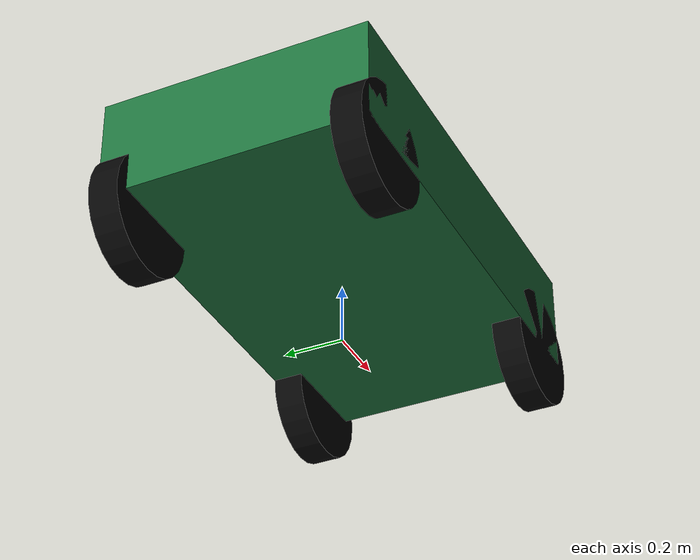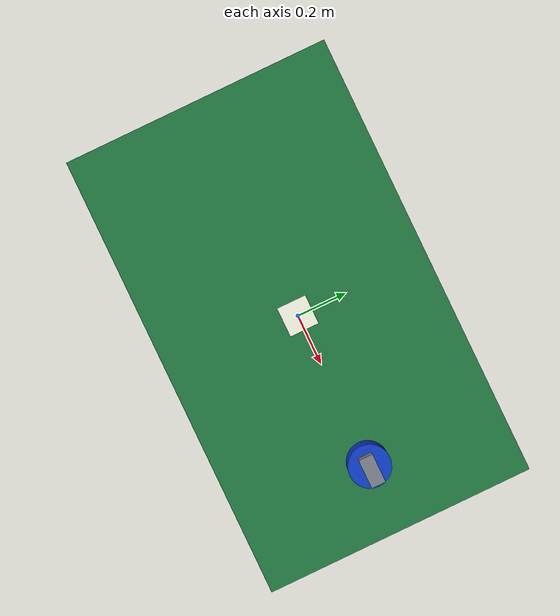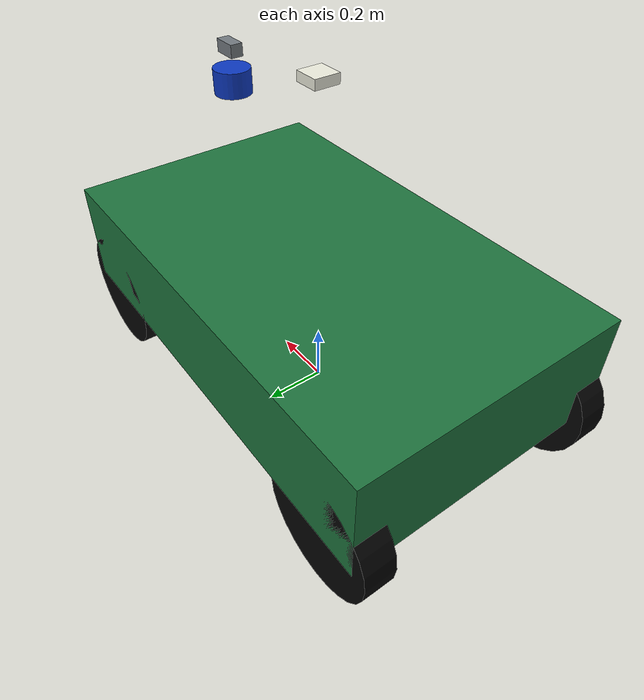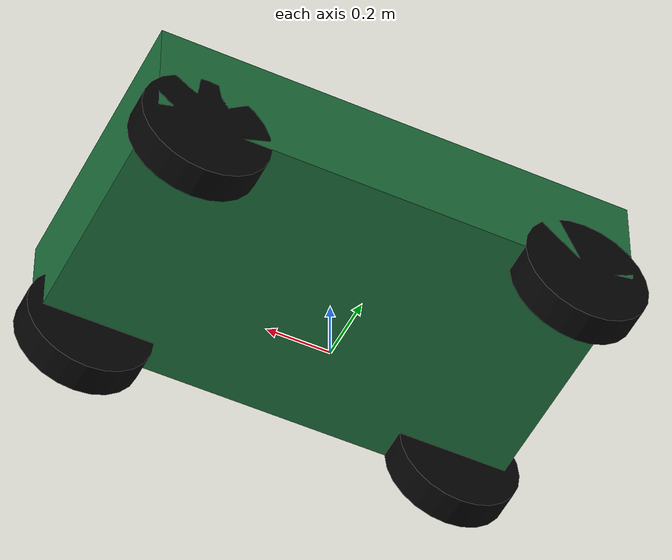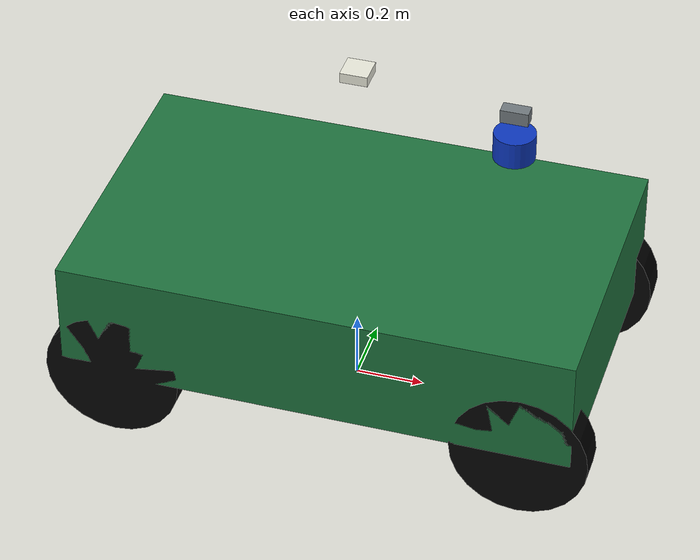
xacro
<?xml version="1.0"?>
<robot xmlns:xacro="http://www.ros.org/wiki/xacro" name="spraying_car">
  <!-- Confirmed vehicle parameters. Units are meters and radians unless noted. -->
  <xacro:property name="wheelbase" value="1.2"/>
  <xacro:property name="track_width" value="0.8"/>
  <xacro:property name="wheel_diameter" value="0.4"/>
  <xacro:property name="wheel_radius" value="0.2"/>

  <!-- Estimated placeholders, pending physical measurement. -->
  <xacro:property name="wheel_width" value="0.10"/>
  <xacro:property name="chassis_length" value="1.5"/>
  <xacro:property name="chassis_width" value="0.9"/>
  <xacro:property name="chassis_height" value="0.35"/>
  <xacro:property name="base_link_z" value="${wheel_radius + chassis_height / 2.0}"/>
  <xacro:property name="wheel_z" value="${-chassis_height / 2.0}"/>
  <xacro:property name="min_turning_radius" value="1.5"/>
  <xacro:property name="max_steer_angle_deg" value="35.0"/>
  <xacro:property name="max_steer_angle_rad" value="0.610865"/>

  <!--
    L1RM is mounted near the front of the vehicle and slightly above the chassis.
    Current xyz/rpy values are estimates and must be corrected after real measurement.
  -->
  <xacro:property name="lidar_x" value="0.45"/>
  <xacro:property name="lidar_y" value="0.0"/>
  <xacro:property name="lidar_z" value="0.55"/>
  <xacro:property name="lidar_roll" value="0.0"/>
  <xacro:property name="lidar_pitch" value="0.0"/>
  <xacro:property name="lidar_yaw" value="0.0"/>

  <xacro:property name="camera_x" value="0.45"/>
  <xacro:property name="camera_y" value="0.0"/>
  <xacro:property name="camera_z" value="0.65"/>
  <xacro:property name="camera_roll" value="0.0"/>
  <xacro:property name="camera_pitch" value="0.0"/>
  <xacro:property name="camera_yaw" value="0.0"/>

  <xacro:property name="gps_x" value="0.0"/>
  <xacro:property name="gps_y" value="0.0"/>
  <xacro:property name="gps_z" value="0.70"/>
  <xacro:property name="gps_roll" value="0.0"/>
  <xacro:property name="gps_pitch" value="0.0"/>
  <xacro:property name="gps_yaw" value="0.0"/>

  <material name="chassis_green">
    <color rgba="0.12 0.45 0.24 1.0"/>
  </material>
  <material name="wheel_black">
    <color rgba="0.02 0.02 0.02 1.0"/>
  </material>
  <material name="sensor_blue">
    <color rgba="0.05 0.22 0.75 1.0"/>
  </material>
  <material name="sensor_gray">
    <color rgba="0.45 0.48 0.50 1.0"/>
  </material>
  <material name="gps_white">
    <color rgba="0.92 0.92 0.86 1.0"/>
  </material>

  <xacro:macro name="wheel_link" params="name">
    <link name="${name}">
      <visual>
        <origin xyz="0 0 0" rpy="1.57079632679 0 0"/>
        <geometry>
          <cylinder radius="${wheel_radius}" length="${wheel_width}"/>
        </geometry>
        <material name="wheel_black"/>
      </visual>
      <collision>
        <origin xyz="0 0 0" rpy="1.57079632679 0 0"/>
        <geometry>
          <cylinder radius="${wheel_radius}" length="${wheel_width}"/>
        </geometry>
      </collision>
    </link>
  </xacro:macro>

  <link name="base_footprint"/>

  <joint name="base_footprint_to_base_link" type="fixed">
    <parent link="base_footprint"/>
    <child link="base_link"/>
    <origin xyz="0 0 ${base_link_z}" rpy="0 0 0"/>
  </joint>

  <link name="base_link"/>

  <joint name="base_link_to_chassis_link" type="fixed">
    <parent link="base_link"/>
    <child link="chassis_link"/>
    <origin xyz="0 0 0" rpy="0 0 0"/>
  </joint>

  <link name="chassis_link">
    <visual>
      <origin xyz="0 0 0" rpy="0 0 0"/>
      <geometry>
        <box size="${chassis_length} ${chassis_width} ${chassis_height}"/>
      </geometry>
      <material name="chassis_green"/>
    </visual>
    <collision>
      <origin xyz="0 0 0" rpy="0 0 0"/>
      <geometry>
        <box size="${chassis_length} ${chassis_width} ${chassis_height}"/>
      </geometry>
    </collision>
  </link>

  <xacro:wheel_link name="front_left_wheel_link"/>
  <xacro:wheel_link name="front_right_wheel_link"/>
  <xacro:wheel_link name="rear_left_wheel_link"/>
  <xacro:wheel_link name="rear_right_wheel_link"/>

  <joint name="base_link_to_front_left_wheel_link" type="fixed">
    <parent link="base_link"/>
    <child link="front_left_wheel_link"/>
    <origin xyz="${wheelbase / 2.0} ${track_width / 2.0} ${wheel_z}" rpy="0 0 0"/>
  </joint>

  <joint name="base_link_to_front_right_wheel_link" type="fixed">
    <parent link="base_link"/>
    <child link="front_right_wheel_link"/>
    <origin xyz="${wheelbase / 2.0} ${-track_width / 2.0} ${wheel_z}" rpy="0 0 0"/>
  </joint>

  <joint name="base_link_to_rear_left_wheel_link" type="fixed">
    <parent link="base_link"/>
    <child link="rear_left_wheel_link"/>
    <origin xyz="${-wheelbase / 2.0} ${track_width / 2.0} ${wheel_z}" rpy="0 0 0"/>
  </joint>

  <joint name="base_link_to_rear_right_wheel_link" type="fixed">
    <parent link="base_link"/>
    <child link="rear_right_wheel_link"/>
    <origin xyz="${-wheelbase / 2.0} ${-track_width / 2.0} ${wheel_z}" rpy="0 0 0"/>
  </joint>

  <link name="lidar_link">
    <visual>
      <origin xyz="0 0 0" rpy="0 0 0"/>
      <geometry>
        <cylinder radius="0.06" length="0.08"/>
      </geometry>
      <material name="sensor_blue"/>
    </visual>
    <collision>
      <origin xyz="0 0 0" rpy="0 0 0"/>
      <geometry>
        <cylinder radius="0.06" length="0.08"/>
      </geometry>
    </collision>
  </link>

  <joint name="base_link_to_lidar_link" type="fixed">
    <parent link="base_link"/>
    <child link="lidar_link"/>
    <origin xyz="${lidar_x} ${lidar_y} ${lidar_z}" rpy="${lidar_roll} ${lidar_pitch} ${lidar_yaw}"/>
  </joint>

  <link name="imu_link">
    <visual>
      <origin xyz="0 0 0" rpy="0 0 0"/>
      <geometry>
        <box size="0.03 0.03 0.01"/>
      </geometry>
      <material name="sensor_gray"/>
    </visual>
  </link>

  <joint name="lidar_link_to_imu_link" type="fixed">
    <parent link="lidar_link"/>
    <child link="imu_link"/>
    <origin xyz="0 0 0" rpy="0 0 0"/>
  </joint>

  <link name="camera_link">
    <visual>
      <origin xyz="0 0 0" rpy="0 0 0"/>
      <geometry>
        <box size="0.08 0.04 0.04"/>
      </geometry>
      <material name="sensor_gray"/>
    </visual>
    <collision>
      <origin xyz="0 0 0" rpy="0 0 0"/>
      <geometry>
        <box size="0.08 0.04 0.04"/>
      </geometry>
    </collision>
  </link>

  <joint name="base_link_to_camera_link" type="fixed">
    <parent link="base_link"/>
    <child link="camera_link"/>
    <origin xyz="${camera_x} ${camera_y} ${camera_z}" rpy="${camera_roll} ${camera_pitch} ${camera_yaw}"/>
  </joint>

  <link name="gps_link">
    <visual>
      <origin xyz="0 0 0" rpy="0 0 0"/>
      <geometry>
        <box size="0.08 0.08 0.03"/>
      </geometry>
      <material name="gps_white"/>
    </visual>
    <collision>
      <origin xyz="0 0 0" rpy="0 0 0"/>
      <geometry>
        <box size="0.08 0.08 0.03"/>
      </geometry>
    </collision>
  </link>

  <joint name="base_link_to_gps_link" type="fixed">
    <parent link="base_link"/>
    <child link="gps_link"/>
    <origin xyz="${gps_x} ${gps_y} ${gps_z}" rpy="${gps_roll} ${gps_pitch} ${gps_yaw}"/>
  </joint>
</robot>
